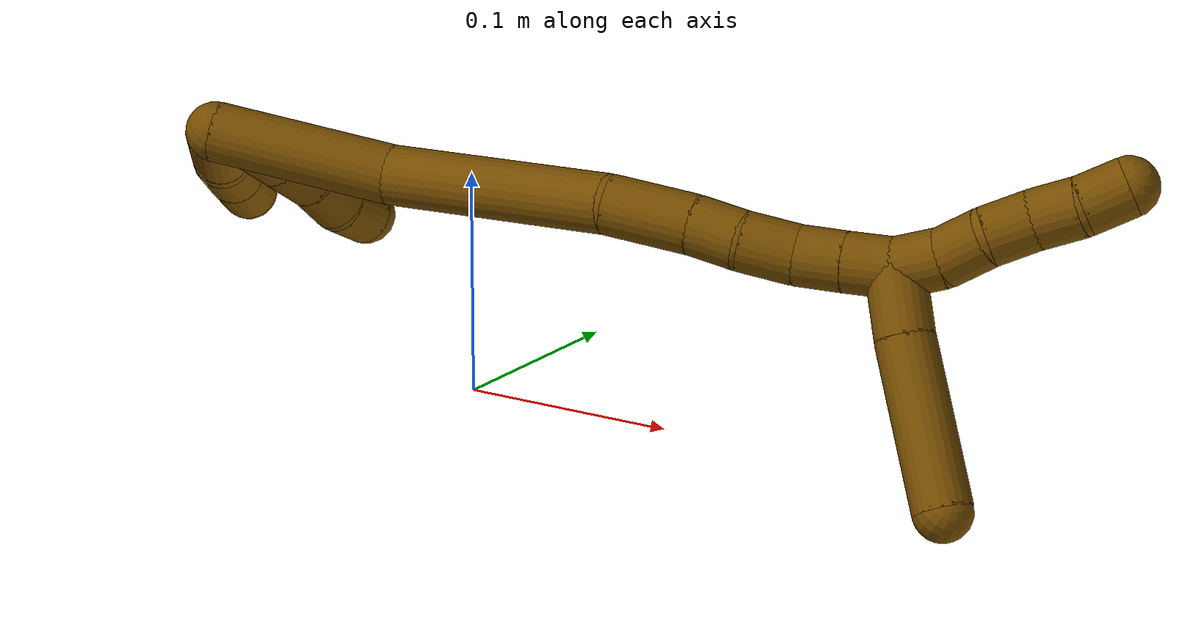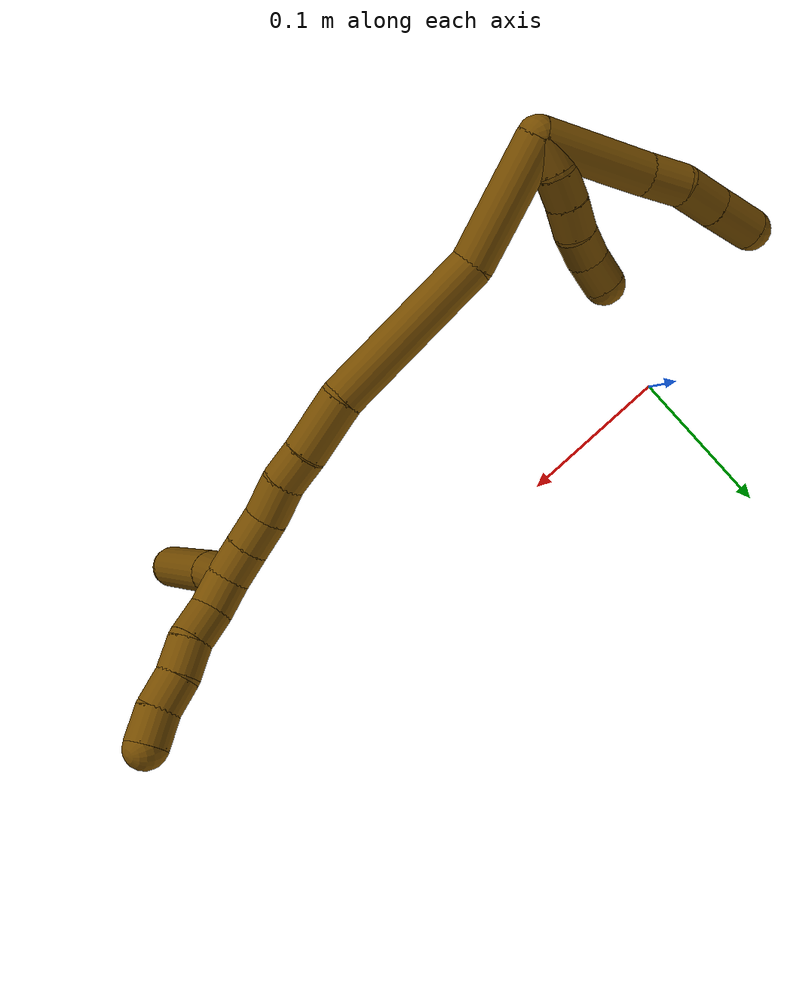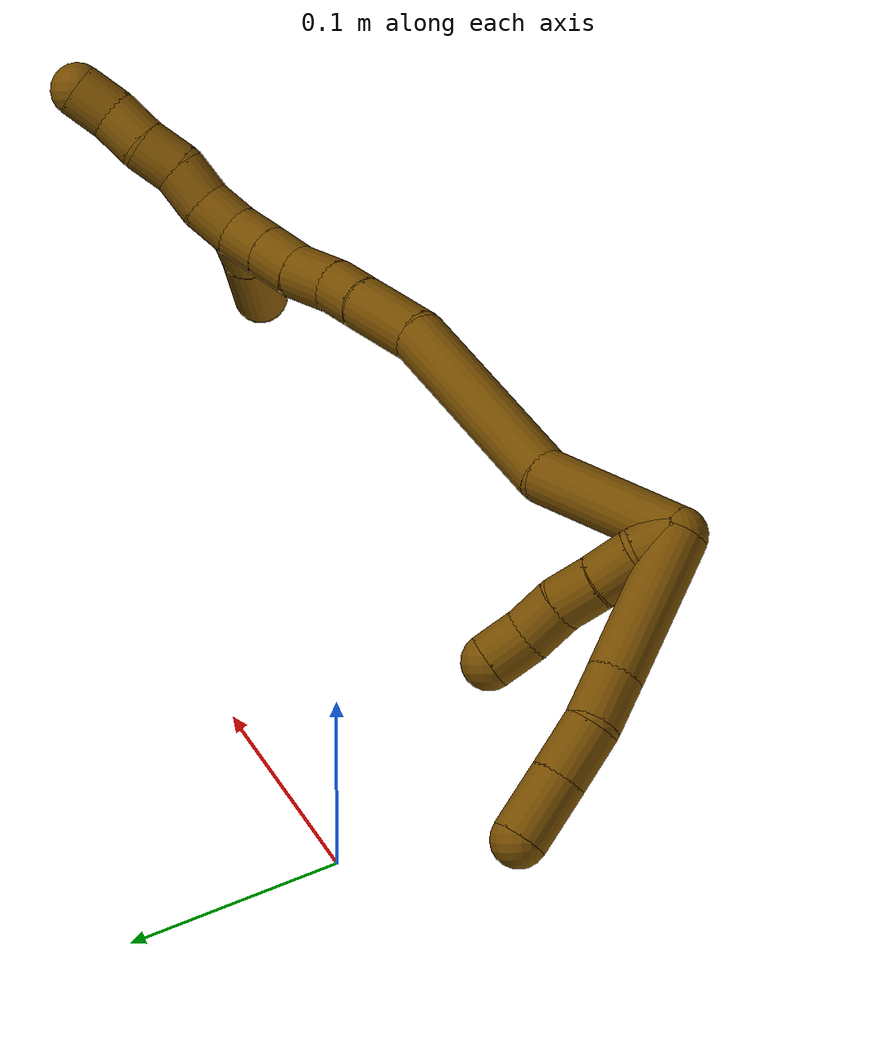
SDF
<sdf version="1.7">
 <world name="default">
  <model name="12">
   <static>0</static>
   <link name="12">
    <collision name="collision-cylinder-e_1_2_8">
     <pose>0.012303 0.016791 -0.027429 -2.59228 0.36538 -1.16069</pose>
     <geometry><cylinder><radius>0.0125</radius><length>0.068866</length></cylinder></geometry>
     <surface>
      <friction><ode><mu>1.16</mu><mu2>1.16</mu2><slip1>0</slip1><slip2>0</slip2></ode></friction>
      <contact><ode><kp>1e+06</kp><kd>1</kd><max_vel>0</max_vel><min_depth>0.001</min_depth></ode></contact>
     </surface>
    </collision>
    <visual name="visual-cylinder-e_1_2_8">
     <pose>0.012303 0.016791 -0.027429 -2.59228 0.36538 -1.16069</pose>
     <geometry><cylinder><radius>0.0125</radius><length>0.068866</length></cylinder></geometry>
     <material><ambient>0.466667 0.301961 0 1</ambient></material>
    </visual>
    <collision name="collision-cylinder-e_2_8_9">
     <pose>0.028726 0.040111 -0.064195 -2.53132 0.346963 -1.01544</pose>
     <geometry><cylinder><radius>0.0125</radius><length>0.024231</length></cylinder></geometry>
     <surface>
      <friction><ode><mu>1.16</mu><mu2>1.16</mu2><slip1>0</slip1><slip2>0</slip2></ode></friction>
      <contact><ode><kp>1e+06</kp><kd>1</kd><max_vel>0</max_vel><min_depth>0.001</min_depth></ode></contact>
     </surface>
    </collision>
    <visual name="visual-cylinder-e_2_8_9">
     <pose>0.028726 0.040111 -0.064195 -2.53132 0.346963 -1.01544</pose>
     <geometry><cylinder><radius>0.0125</radius><length>0.024231</length></cylinder></geometry>
     <material><ambient>0.466667 0.301961 0 1</ambient></material>
    </visual>
    <collision name="collision-cylinder-e_3_9_10">
     <pose>0.039642 0.051181 -0.083748 -2.72342 0.5462 -1.84497</pose>
     <geometry><cylinder><radius>0.0125</radius><length>0.026168</length></cylinder></geometry>
     <surface>
      <friction><ode><mu>1.16</mu><mu2>1.16</mu2><slip1>0</slip1><slip2>0</slip2></ode></friction>
      <contact><ode><kp>1e+06</kp><kd>1</kd><max_vel>0</max_vel><min_depth>0.001</min_depth></ode></contact>
     </surface>
    </collision>
    <visual name="visual-cylinder-e_3_9_10">
     <pose>0.039642 0.051181 -0.083748 -2.72342 0.5462 -1.84497</pose>
     <geometry><cylinder><radius>0.0125</radius><length>0.026168</length></cylinder></geometry>
     <material><ambient>0.466667 0.301961 0 1</ambient></material>
    </visual>
    <collision name="collision-cylinder-e_4_10_6">
     <pose>0.05439 0.0615 -0.105777 -2.68654 0.543875 -1.75565</pose>
     <geometry><cylinder><radius>0.0125</radius><length>0.030735</length></cylinder></geometry>
     <surface>
      <friction><ode><mu>1.16</mu><mu2>1.16</mu2><slip1>0</slip1><slip2>0</slip2></ode></friction>
      <contact><ode><kp>1e+06</kp><kd>1</kd><max_vel>0</max_vel><min_depth>0.001</min_depth></ode></contact>
     </surface>
    </collision>
    <visual name="visual-cylinder-e_4_10_6">
     <pose>0.05439 0.0615 -0.105777 -2.68654 0.543875 -1.75565</pose>
     <geometry><cylinder><radius>0.0125</radius><length>0.030735</length></cylinder></geometry>
     <material><ambient>0.466667 0.301961 0 1</ambient></material>
    </visual>
    <collision name="collision-cylinder-e_1_2_11">
     <pose>0.009036 0.001878 -0.003851 -2.68793 1.12803 -2.44186</pose>
     <geometry><cylinder><radius>0.0125</radius><length>0.02</length></cylinder></geometry>
     <surface>
      <friction><ode><mu>1.16</mu><mu2>1.16</mu2><slip1>0</slip1><slip2>0</slip2></ode></friction>
      <contact><ode><kp>1e+06</kp><kd>1</kd><max_vel>0</max_vel><min_depth>0.001</min_depth></ode></contact>
     </surface>
    </collision>
    <visual name="visual-cylinder-e_1_2_11">
     <pose>0.009036 0.001878 -0.003851 -2.68793 1.12803 -2.44186</pose>
     <geometry><cylinder><radius>0.0125</radius><length>0.02</length></cylinder></geometry>
     <material><ambient>0.466667 0.301961 0 1</ambient></material>
    </visual>
    <collision name="collision-cylinder-e_2_11_12">
     <pose>0.026662 0.003656 -0.012819 3.12212 1.03347 3.10732</pose>
     <geometry><cylinder><radius>0.0125</radius><length>0.02</length></cylinder></geometry>
     <surface>
      <friction><ode><mu>1.16</mu><mu2>1.16</mu2><slip1>0</slip1><slip2>0</slip2></ode></friction>
      <contact><ode><kp>1e+06</kp><kd>1</kd><max_vel>0</max_vel><min_depth>0.001</min_depth></ode></contact>
     </surface>
    </collision>
    <visual name="visual-cylinder-e_2_11_12">
     <pose>0.026662 0.003656 -0.012819 3.12212 1.03347 3.10732</pose>
     <geometry><cylinder><radius>0.0125</radius><length>0.02</length></cylinder></geometry>
     <material><ambient>0.466667 0.301961 0 1</ambient></material>
    </visual>
    <collision name="collision-cylinder-e_3_12_13">
     <pose>0.044054 0.002815 -0.022628 2.98486 1.07596 2.87989</pose>
     <geometry><cylinder><radius>0.0125</radius><length>0.02</length></cylinder></geometry>
     <surface>
      <friction><ode><mu>1.16</mu><mu2>1.16</mu2><slip1>0</slip1><slip2>0</slip2></ode></friction>
      <contact><ode><kp>1e+06</kp><kd>1</kd><max_vel>0</max_vel><min_depth>0.001</min_depth></ode></contact>
     </surface>
    </collision>
    <visual name="visual-cylinder-e_3_12_13">
     <pose>0.044054 0.002815 -0.022628 2.98486 1.07596 2.87989</pose>
     <geometry><cylinder><radius>0.0125</radius><length>0.02</length></cylinder></geometry>
     <material><ambient>0.466667 0.301961 0 1</ambient></material>
    </visual>
    <collision name="collision-cylinder-e_4_13_14">
     <pose>0.060599 0.001631 -0.033629 3.07156 0.885854 2.99416</pose>
     <geometry><cylinder><radius>0.0125</radius><length>0.02</length></cylinder></geometry>
     <surface>
      <friction><ode><mu>1.16</mu><mu2>1.16</mu2><slip1>0</slip1><slip2>0</slip2></ode></friction>
      <contact><ode><kp>1e+06</kp><kd>1</kd><max_vel>0</max_vel><min_depth>0.001</min_depth></ode></contact>
     </surface>
    </collision>
    <visual name="visual-cylinder-e_4_13_14">
     <pose>0.060599 0.001631 -0.033629 3.07156 0.885854 2.99416</pose>
     <geometry><cylinder><radius>0.0125</radius><length>0.02</length></cylinder></geometry>
     <material><ambient>0.466667 0.301961 0 1</ambient></material>
    </visual>
    <collision name="collision-cylinder-e_5_14_5">
     <pose>0.076611 0.003109 -0.045227 -2.79311 0.973326 -2.49925</pose>
     <geometry><cylinder><radius>0.0125</radius><length>0.02</length></cylinder></geometry>
     <surface>
      <friction><ode><mu>1.16</mu><mu2>1.16</mu2><slip1>0</slip1><slip2>0</slip2></ode></friction>
      <contact><ode><kp>1e+06</kp><kd>1</kd><max_vel>0</max_vel><min_depth>0.001</min_depth></ode></contact>
     </surface>
    </collision>
    <visual name="visual-cylinder-e_5_14_5">
     <pose>0.076611 0.003109 -0.045227 -2.79311 0.973326 -2.49925</pose>
     <geometry><cylinder><radius>0.0125</radius><length>0.02</length></cylinder></geometry>
     <material><ambient>0.466667 0.301961 0 1</ambient></material>
    </visual>
    <collision name="collision-cylinder-e_1_2_15">
     <pose>0.032253 -0.017041 0.012086 0.953906 0.996014 0.547803</pose>
     <geometry><cylinder><radius>0.0125</radius><length>0.076856</length></cylinder></geometry>
     <surface>
      <friction><ode><mu>1.16</mu><mu2>1.16</mu2><slip1>0</slip1><slip2>0</slip2></ode></friction>
      <contact><ode><kp>1e+06</kp><kd>1</kd><max_vel>0</max_vel><min_depth>0.001</min_depth></ode></contact>
     </surface>
    </collision>
    <visual name="visual-cylinder-e_1_2_15">
     <pose>0.032253 -0.017041 0.012086 0.953906 0.996014 0.547803</pose>
     <geometry><cylinder><radius>0.0125</radius><length>0.076856</length></cylinder></geometry>
     <material><ambient>0.466667 0.301961 0 1</ambient></material>
    </visual>
    <collision name="collision-cylinder-e_2_15_16">
     <pose>0.09673 -0.060583 0.053417 0.736202 0.684711 0.273193</pose>
     <geometry><cylinder><radius>0.0125</radius><length>0.101902</length></cylinder></geometry>
     <surface>
      <friction><ode><mu>1.16</mu><mu2>1.16</mu2><slip1>0</slip1><slip2>0</slip2></ode></friction>
      <contact><ode><kp>1e+06</kp><kd>1</kd><max_vel>0</max_vel><min_depth>0.001</min_depth></ode></contact>
     </surface>
    </collision>
    <visual name="visual-cylinder-e_2_15_16">
     <pose>0.09673 -0.060583 0.053417 0.736202 0.684711 0.273193</pose>
     <geometry><cylinder><radius>0.0125</radius><length>0.101902</length></cylinder></geometry>
     <material><ambient>0.466667 0.301961 0 1</ambient></material>
    </visual>
    <collision name="collision-cylinder-e_3_16_17">
     <pose>0.143273 -0.096298 0.08992 0.903707 0.884491 0.4518</pose>
     <geometry><cylinder><radius>0.0125</radius><length>0.037019</length></cylinder></geometry>
     <surface>
      <friction><ode><mu>1.16</mu><mu2>1.16</mu2><slip1>0</slip1><slip2>0</slip2></ode></friction>
      <contact><ode><kp>1e+06</kp><kd>1</kd><max_vel>0</max_vel><min_depth>0.001</min_depth></ode></contact>
     </surface>
    </collision>
    <visual name="visual-cylinder-e_3_16_17">
     <pose>0.143273 -0.096298 0.08992 0.903707 0.884491 0.4518</pose>
     <geometry><cylinder><radius>0.0125</radius><length>0.037019</length></cylinder></geometry>
     <material><ambient>0.466667 0.301961 0 1</ambient></material>
    </visual>
    <collision name="collision-cylinder-e_4_17_18">
     <pose>0.165215 -0.111467 0.100869 1.01569 0.827628 0.479429</pose>
     <geometry><cylinder><radius>0.0125</radius><length>0.020706</length></cylinder></geometry>
     <surface>
      <friction><ode><mu>1.16</mu><mu2>1.16</mu2><slip1>0</slip1><slip2>0</slip2></ode></friction>
      <contact><ode><kp>1e+06</kp><kd>1</kd><max_vel>0</max_vel><min_depth>0.001</min_depth></ode></contact>
     </surface>
    </collision>
    <visual name="visual-cylinder-e_4_17_18">
     <pose>0.165215 -0.111467 0.100869 1.01569 0.827628 0.479429</pose>
     <geometry><cylinder><radius>0.0125</radius><length>0.020706</length></cylinder></geometry>
     <material><ambient>0.466667 0.301961 0 1</ambient></material>
    </visual>
    <collision name="collision-cylinder-e_5_18_19">
     <pose>0.182737 -0.122558 0.10799 0.982297 1.0129 0.576838</pose>
     <geometry><cylinder><radius>0.0125</radius><length>0.023336</length></cylinder></geometry>
     <surface>
      <friction><ode><mu>1.16</mu><mu2>1.16</mu2><slip1>0</slip1><slip2>0</slip2></ode></friction>
      <contact><ode><kp>1e+06</kp><kd>1</kd><max_vel>0</max_vel><min_depth>0.001</min_depth></ode></contact>
     </surface>
    </collision>
    <visual name="visual-cylinder-e_5_18_19">
     <pose>0.182737 -0.122558 0.10799 0.982297 1.0129 0.576838</pose>
     <geometry><cylinder><radius>0.0125</radius><length>0.023336</length></cylinder></geometry>
     <material><ambient>0.466667 0.301961 0 1</ambient></material>
    </visual>
    <collision name="collision-cylinder-e_6_19_20">
     <pose>0.200451 -0.132015 0.115996 0.756412 0.892875 0.375893</pose>
     <geometry><cylinder><radius>0.0125</radius><length>0.020068</length></cylinder></geometry>
     <surface>
      <friction><ode><mu>1.16</mu><mu2>1.16</mu2><slip1>0</slip1><slip2>0</slip2></ode></friction>
      <contact><ode><kp>1e+06</kp><kd>1</kd><max_vel>0</max_vel><min_depth>0.001</min_depth></ode></contact>
     </surface>
    </collision>
    <visual name="visual-cylinder-e_6_19_20">
     <pose>0.200451 -0.132015 0.115996 0.756412 0.892875 0.375893</pose>
     <geometry><cylinder><radius>0.0125</radius><length>0.020068</length></cylinder></geometry>
     <material><ambient>0.466667 0.301961 0 1</ambient></material>
    </visual>
    <collision name="collision-cylinder-e_7_20_1">
     <pose>0.216157 -0.14049 0.12522 0.729687 0.902044 0.365827</pose>
     <geometry><cylinder><radius>0.0125</radius><length>0.020112</length></cylinder></geometry>
     <surface>
      <friction><ode><mu>1.16</mu><mu2>1.16</mu2><slip1>0</slip1><slip2>0</slip2></ode></friction>
      <contact><ode><kp>1e+06</kp><kd>1</kd><max_vel>0</max_vel><min_depth>0.001</min_depth></ode></contact>
     </surface>
    </collision>
    <visual name="visual-cylinder-e_7_20_1">
     <pose>0.216157 -0.14049 0.12522 0.729687 0.902044 0.365827</pose>
     <geometry><cylinder><radius>0.0125</radius><length>0.020112</length></cylinder></geometry>
     <material><ambient>0.466667 0.301961 0 1</ambient></material>
    </visual>
    <collision name="collision-cylinder-e_1_1_21">
     <pose>0.231568 -0.146149 0.136285 0.229947 0.851256 0.10461</pose>
     <geometry><cylinder><radius>0.0125</radius><length>0.02</length></cylinder></geometry>
     <surface>
      <friction><ode><mu>1.16</mu><mu2>1.16</mu2><slip1>0</slip1><slip2>0</slip2></ode></friction>
      <contact><ode><kp>1e+06</kp><kd>1</kd><max_vel>0</max_vel><min_depth>0.001</min_depth></ode></contact>
     </surface>
    </collision>
    <visual name="visual-cylinder-e_1_1_21">
     <pose>0.231568 -0.146149 0.136285 0.229947 0.851256 0.10461</pose>
     <geometry><cylinder><radius>0.0125</radius><length>0.02</length></cylinder></geometry>
     <material><ambient>0.466667 0.301961 0 1</ambient></material>
    </visual>
    <collision name="collision-cylinder-e_2_21_22">
     <pose>0.244864 -0.148021 0.150857 0.04538 0.615696 0.014431</pose>
     <geometry><cylinder><radius>0.0125</radius><length>0.02</length></cylinder></geometry>
     <surface>
      <friction><ode><mu>1.16</mu><mu2>1.16</mu2><slip1>0</slip1><slip2>0</slip2></ode></friction>
      <contact><ode><kp>1e+06</kp><kd>1</kd><max_vel>0</max_vel><min_depth>0.001</min_depth></ode></contact>
     </surface>
    </collision>
    <visual name="visual-cylinder-e_2_21_22">
     <pose>0.244864 -0.148021 0.150857 0.04538 0.615696 0.014431</pose>
     <geometry><cylinder><radius>0.0125</radius><length>0.02</length></cylinder></geometry>
     <material><ambient>0.466667 0.301961 0 1</ambient></material>
    </visual>
    <collision name="collision-cylinder-e_3_22_23">
     <pose>0.258494 -0.147922 0.165183 -0.07604 0.903524 -0.03691</pose>
     <geometry><cylinder><radius>0.0125</radius><length>0.02</length></cylinder></geometry>
     <surface>
      <friction><ode><mu>1.16</mu><mu2>1.16</mu2><slip1>0</slip1><slip2>0</slip2></ode></friction>
      <contact><ode><kp>1e+06</kp><kd>1</kd><max_vel>0</max_vel><min_depth>0.001</min_depth></ode></contact>
     </surface>
    </collision>
    <visual name="visual-cylinder-e_3_22_23">
     <pose>0.258494 -0.147922 0.165183 -0.07604 0.903524 -0.03691</pose>
     <geometry><cylinder><radius>0.0125</radius><length>0.02</length></cylinder></geometry>
     <material><ambient>0.466667 0.301961 0 1</ambient></material>
    </visual>
    <collision name="collision-cylinder-e_4_23_24">
     <pose>0.273388 -0.14871 0.178344 0.178072 0.780808 0.073443</pose>
     <geometry><cylinder><radius>0.0125</radius><length>0.02</length></cylinder></geometry>
     <surface>
      <friction><ode><mu>1.16</mu><mu2>1.16</mu2><slip1>0</slip1><slip2>0</slip2></ode></friction>
      <contact><ode><kp>1e+06</kp><kd>1</kd><max_vel>0</max_vel><min_depth>0.001</min_depth></ode></contact>
     </surface>
    </collision>
    <visual name="visual-cylinder-e_4_23_24">
     <pose>0.273388 -0.14871 0.178344 0.178072 0.780808 0.073443</pose>
     <geometry><cylinder><radius>0.0125</radius><length>0.02</length></cylinder></geometry>
     <material><ambient>0.466667 0.301961 0 1</ambient></material>
    </visual>
    <collision name="collision-cylinder-e_5_24_4">
     <pose>0.288127 -0.149016 0.191644 -0.149825 0.878916 -0.070538</pose>
     <geometry><cylinder><radius>0.0125</radius><length>0.02</length></cylinder></geometry>
     <surface>
      <friction><ode><mu>1.16</mu><mu2>1.16</mu2><slip1>0</slip1><slip2>0</slip2></ode></friction>
      <contact><ode><kp>1e+06</kp><kd>1</kd><max_vel>0</max_vel><min_depth>0.001</min_depth></ode></contact>
     </surface>
    </collision>
    <visual name="visual-cylinder-e_5_24_4">
     <pose>0.288127 -0.149016 0.191644 -0.149825 0.878916 -0.070538</pose>
     <geometry><cylinder><radius>0.0125</radius><length>0.02</length></cylinder></geometry>
     <material><ambient>0.466667 0.301961 0 1</ambient></material>
    </visual>
    <collision name="collision-cylinder-e_1_1_25">
     <pose>0.225791 -0.157766 0.124229 1.97676 0.121544 0.184245</pose>
     <geometry><cylinder><radius>0.0125</radius><length>0.028772</length></cylinder></geometry>
     <surface>
      <friction><ode><mu>1.16</mu><mu2>1.16</mu2><slip1>0</slip1><slip2>0</slip2></ode></friction>
      <contact><ode><kp>1e+06</kp><kd>1</kd><max_vel>0</max_vel><min_depth>0.001</min_depth></ode></contact>
     </surface>
    </collision>
    <visual name="visual-cylinder-e_1_1_25">
     <pose>0.225791 -0.157766 0.124229 1.97676 0.121544 0.184245</pose>
     <geometry><cylinder><radius>0.0125</radius><length>0.028772</length></cylinder></geometry>
     <material><ambient>0.466667 0.301961 0 1</ambient></material>
    </visual>
    <collision name="collision-cylinder-e_2_25_3">
     <pose>0.233859 -0.203736 0.106375 1.92678 0.178513 0.256105</pose>
     <geometry><cylinder><radius>0.0125</radius><length>0.071228</length></cylinder></geometry>
     <surface>
      <friction><ode><mu>1.16</mu><mu2>1.16</mu2><slip1>0</slip1><slip2>0</slip2></ode></friction>
      <contact><ode><kp>1e+06</kp><kd>1</kd><max_vel>0</max_vel><min_depth>0.001</min_depth></ode></contact>
     </surface>
    </collision>
    <visual name="visual-cylinder-e_2_25_3">
     <pose>0.233859 -0.203736 0.106375 1.92678 0.178513 0.256105</pose>
     <geometry><cylinder><radius>0.0125</radius><length>0.071228</length></cylinder></geometry>
     <material><ambient>0.466667 0.301961 0 1</ambient></material>
    </visual>
    <collision name="collision-sphere-3">
     <pose>0.240183 -0.236587 0.09416 0 -0 0</pose>
     <geometry><sphere><radius>0.0125</radius></sphere></geometry>
     <surface>
      <friction><ode><mu>1.16</mu><mu2>1.16</mu2><slip1>0</slip1><slip2>0</slip2></ode></friction>
      <contact><ode><kp>1e+06</kp><kd>1</kd><max_vel>0</max_vel><min_depth>0.001</min_depth></ode></contact>
     </surface>
    </collision>
    <visual name="visual-sphere-3">
     <pose>0.240183 -0.236587 0.09416 0 -0 0</pose>
     <geometry><sphere><radius>0.0125</radius></sphere></geometry>
     <material><ambient>0.466667 0.301961 0 1</ambient></material>
    </visual>
    <collision name="collision-sphere-25">
     <pose>0.227535 -0.170885 0.11859 0 -0 0</pose>
     <geometry><sphere><radius>0.0125</radius></sphere></geometry>
     <surface>
      <friction><ode><mu>1.16</mu><mu2>1.16</mu2><slip1>0</slip1><slip2>0</slip2></ode></friction>
      <contact><ode><kp>1e+06</kp><kd>1</kd><max_vel>0</max_vel><min_depth>0.001</min_depth></ode></contact>
     </surface>
    </collision>
    <visual name="visual-sphere-25">
     <pose>0.227535 -0.170885 0.11859 0 -0 0</pose>
     <geometry><sphere><radius>0.0125</radius></sphere></geometry>
     <material><ambient>0.466667 0.301961 0 1</ambient></material>
    </visual>
    <collision name="collision-sphere-4">
     <pose>0.295828 -0.148063 0.197952 0 -0 0</pose>
     <geometry><sphere><radius>0.0125</radius></sphere></geometry>
     <surface>
      <friction><ode><mu>1.16</mu><mu2>1.16</mu2><slip1>0</slip1><slip2>0</slip2></ode></friction>
      <contact><ode><kp>1e+06</kp><kd>1</kd><max_vel>0</max_vel><min_depth>0.001</min_depth></ode></contact>
     </surface>
    </collision>
    <visual name="visual-sphere-4">
     <pose>0.295828 -0.148063 0.197952 0 -0 0</pose>
     <geometry><sphere><radius>0.0125</radius></sphere></geometry>
     <material><ambient>0.466667 0.301961 0 1</ambient></material>
    </visual>
    <collision name="collision-sphere-24">
     <pose>0.280427 -0.149968 0.185336 0 -0 0</pose>
     <geometry><sphere><radius>0.0125</radius></sphere></geometry>
     <surface>
      <friction><ode><mu>1.16</mu><mu2>1.16</mu2><slip1>0</slip1><slip2>0</slip2></ode></friction>
      <contact><ode><kp>1e+06</kp><kd>1</kd><max_vel>0</max_vel><min_depth>0.001</min_depth></ode></contact>
     </surface>
    </collision>
    <visual name="visual-sphere-24">
     <pose>0.280427 -0.149968 0.185336 0 -0 0</pose>
     <geometry><sphere><radius>0.0125</radius></sphere></geometry>
     <material><ambient>0.466667 0.301961 0 1</ambient></material>
    </visual>
    <collision name="collision-sphere-23">
     <pose>0.266349 -0.147452 0.171353 0 -0 0</pose>
     <geometry><sphere><radius>0.0125</radius></sphere></geometry>
     <surface>
      <friction><ode><mu>1.16</mu><mu2>1.16</mu2><slip1>0</slip1><slip2>0</slip2></ode></friction>
      <contact><ode><kp>1e+06</kp><kd>1</kd><max_vel>0</max_vel><min_depth>0.001</min_depth></ode></contact>
     </surface>
    </collision>
    <visual name="visual-sphere-23">
     <pose>0.266349 -0.147452 0.171353 0 -0 0</pose>
     <geometry><sphere><radius>0.0125</radius></sphere></geometry>
     <material><ambient>0.466667 0.301961 0 1</ambient></material>
    </visual>
    <collision name="collision-sphere-22">
     <pose>0.250639 -0.148392 0.159012 0 -0 0</pose>
     <geometry><sphere><radius>0.0125</radius></sphere></geometry>
     <surface>
      <friction><ode><mu>1.16</mu><mu2>1.16</mu2><slip1>0</slip1><slip2>0</slip2></ode></friction>
      <contact><ode><kp>1e+06</kp><kd>1</kd><max_vel>0</max_vel><min_depth>0.001</min_depth></ode></contact>
     </surface>
    </collision>
    <visual name="visual-sphere-22">
     <pose>0.250639 -0.148392 0.159012 0 -0 0</pose>
     <geometry><sphere><radius>0.0125</radius></sphere></geometry>
     <material><ambient>0.466667 0.301961 0 1</ambient></material>
    </visual>
    <collision name="collision-sphere-21">
     <pose>0.239089 -0.147651 0.142702 0 -0 0</pose>
     <geometry><sphere><radius>0.0125</radius></sphere></geometry>
     <surface>
      <friction><ode><mu>1.16</mu><mu2>1.16</mu2><slip1>0</slip1><slip2>0</slip2></ode></friction>
      <contact><ode><kp>1e+06</kp><kd>1</kd><max_vel>0</max_vel><min_depth>0.001</min_depth></ode></contact>
     </surface>
    </collision>
    <visual name="visual-sphere-21">
     <pose>0.239089 -0.147651 0.142702 0 -0 0</pose>
     <geometry><sphere><radius>0.0125</radius></sphere></geometry>
     <material><ambient>0.466667 0.301961 0 1</ambient></material>
    </visual>
    <collision name="collision-sphere-1">
     <pose>0.224046 -0.144647 0.129868 0 -0 0</pose>
     <geometry><sphere><radius>0.0125</radius></sphere></geometry>
     <surface>
      <friction><ode><mu>1.16</mu><mu2>1.16</mu2><slip1>0</slip1><slip2>0</slip2></ode></friction>
      <contact><ode><kp>1e+06</kp><kd>1</kd><max_vel>0</max_vel><min_depth>0.001</min_depth></ode></contact>
     </surface>
    </collision>
    <visual name="visual-sphere-1">
     <pose>0.224046 -0.144647 0.129868 0 -0 0</pose>
     <geometry><sphere><radius>0.0125</radius></sphere></geometry>
     <material><ambient>0.466667 0.301961 0 1</ambient></material>
    </visual>
    <collision name="collision-sphere-11">
     <pose>0.018071 0.003755 -0.007702 0 -0 0</pose>
     <geometry><sphere><radius>0.0125</radius></sphere></geometry>
     <surface>
      <friction><ode><mu>1.16</mu><mu2>1.16</mu2><slip1>0</slip1><slip2>0</slip2></ode></friction>
      <contact><ode><kp>1e+06</kp><kd>1</kd><max_vel>0</max_vel><min_depth>0.001</min_depth></ode></contact>
     </surface>
    </collision>
    <visual name="visual-sphere-11">
     <pose>0.018071 0.003755 -0.007702 0 -0 0</pose>
     <geometry><sphere><radius>0.0125</radius></sphere></geometry>
     <material><ambient>0.466667 0.301961 0 1</ambient></material>
    </visual>
    <collision name="collision-sphere-6">
     <pose>0.062343 0.06728 -0.117589 0 -0 0</pose>
     <geometry><sphere><radius>0.0125</radius></sphere></geometry>
     <surface>
      <friction><ode><mu>1.16</mu><mu2>1.16</mu2><slip1>0</slip1><slip2>0</slip2></ode></friction>
      <contact><ode><kp>1e+06</kp><kd>1</kd><max_vel>0</max_vel><min_depth>0.001</min_depth></ode></contact>
     </surface>
    </collision>
    <visual name="visual-sphere-6">
     <pose>0.062343 0.06728 -0.117589 0 -0 0</pose>
     <geometry><sphere><radius>0.0125</radius></sphere></geometry>
     <material><ambient>0.466667 0.301961 0 1</ambient></material>
    </visual>
    <collision name="collision-sphere-10">
     <pose>0.046438 0.055721 -0.093965 0 -0 0</pose>
     <geometry><sphere><radius>0.0125</radius></sphere></geometry>
     <surface>
      <friction><ode><mu>1.16</mu><mu2>1.16</mu2><slip1>0</slip1><slip2>0</slip2></ode></friction>
      <contact><ode><kp>1e+06</kp><kd>1</kd><max_vel>0</max_vel><min_depth>0.001</min_depth></ode></contact>
     </surface>
    </collision>
    <visual name="visual-sphere-10">
     <pose>0.046438 0.055721 -0.093965 0 -0 0</pose>
     <geometry><sphere><radius>0.0125</radius></sphere></geometry>
     <material><ambient>0.466667 0.301961 0 1</ambient></material>
    </visual>
    <collision name="collision-sphere-9">
     <pose>0.032846 0.04664 -0.073531 0 -0 0</pose>
     <geometry><sphere><radius>0.0125</radius></sphere></geometry>
     <surface>
      <friction><ode><mu>1.16</mu><mu2>1.16</mu2><slip1>0</slip1><slip2>0</slip2></ode></friction>
      <contact><ode><kp>1e+06</kp><kd>1</kd><max_vel>0</max_vel><min_depth>0.001</min_depth></ode></contact>
     </surface>
    </collision>
    <visual name="visual-sphere-9">
     <pose>0.032846 0.04664 -0.073531 0 -0 0</pose>
     <geometry><sphere><radius>0.0125</radius></sphere></geometry>
     <material><ambient>0.466667 0.301961 0 1</ambient></material>
    </visual>
    <collision name="collision-sphere-2">
     <geometry><sphere><radius>0.0125</radius></sphere></geometry>
     <surface>
      <friction><ode><mu>1.16</mu><mu2>1.16</mu2><slip1>0</slip1><slip2>0</slip2></ode></friction>
      <contact><ode><kp>1e+06</kp><kd>1</kd><max_vel>0</max_vel><min_depth>0.001</min_depth></ode></contact>
     </surface>
    </collision>
    <visual name="visual-sphere-2">
     <geometry><sphere><radius>0.0125</radius></sphere></geometry>
     <material><ambient>0.466667 0.301961 0 1</ambient></material>
    </visual>
    <collision name="collision-sphere-19">
     <pose>0.192636 -0.127696 0.111419 0 -0 0</pose>
     <geometry><sphere><radius>0.0125</radius></sphere></geometry>
     <surface>
      <friction><ode><mu>1.16</mu><mu2>1.16</mu2><slip1>0</slip1><slip2>0</slip2></ode></friction>
      <contact><ode><kp>1e+06</kp><kd>1</kd><max_vel>0</max_vel><min_depth>0.001</min_depth></ode></contact>
     </surface>
    </collision>
    <visual name="visual-sphere-19">
     <pose>0.192636 -0.127696 0.111419 0 -0 0</pose>
     <geometry><sphere><radius>0.0125</radius></sphere></geometry>
     <material><ambient>0.466667 0.301961 0 1</ambient></material>
    </visual>
    <collision name="collision-sphere-8">
     <pose>0.024606 0.033582 -0.054858 0 -0 0</pose>
     <geometry><sphere><radius>0.0125</radius></sphere></geometry>
     <surface>
      <friction><ode><mu>1.16</mu><mu2>1.16</mu2><slip1>0</slip1><slip2>0</slip2></ode></friction>
      <contact><ode><kp>1e+06</kp><kd>1</kd><max_vel>0</max_vel><min_depth>0.001</min_depth></ode></contact>
     </surface>
    </collision>
    <visual name="visual-sphere-8">
     <pose>0.024606 0.033582 -0.054858 0 -0 0</pose>
     <geometry><sphere><radius>0.0125</radius></sphere></geometry>
     <material><ambient>0.466667 0.301961 0 1</ambient></material>
    </visual>
    <collision name="collision-sphere-12">
     <pose>0.035253 0.003556 -0.017937 0 -0 0</pose>
     <geometry><sphere><radius>0.0125</radius></sphere></geometry>
     <surface>
      <friction><ode><mu>1.16</mu><mu2>1.16</mu2><slip1>0</slip1><slip2>0</slip2></ode></friction>
      <contact><ode><kp>1e+06</kp><kd>1</kd><max_vel>0</max_vel><min_depth>0.001</min_depth></ode></contact>
     </surface>
    </collision>
    <visual name="visual-sphere-12">
     <pose>0.035253 0.003556 -0.017937 0 -0 0</pose>
     <geometry><sphere><radius>0.0125</radius></sphere></geometry>
     <material><ambient>0.466667 0.301961 0 1</ambient></material>
    </visual>
    <collision name="collision-sphere-13">
     <pose>0.052854 0.002074 -0.027318 0 -0 0</pose>
     <geometry><sphere><radius>0.0125</radius></sphere></geometry>
     <surface>
      <friction><ode><mu>1.16</mu><mu2>1.16</mu2><slip1>0</slip1><slip2>0</slip2></ode></friction>
      <contact><ode><kp>1e+06</kp><kd>1</kd><max_vel>0</max_vel><min_depth>0.001</min_depth></ode></contact>
     </surface>
    </collision>
    <visual name="visual-sphere-13">
     <pose>0.052854 0.002074 -0.027318 0 -0 0</pose>
     <geometry><sphere><radius>0.0125</radius></sphere></geometry>
     <material><ambient>0.466667 0.301961 0 1</ambient></material>
    </visual>
    <collision name="collision-sphere-14">
     <pose>0.068343 0.001188 -0.03994 0 -0 0</pose>
     <geometry><sphere><radius>0.0125</radius></sphere></geometry>
     <surface>
      <friction><ode><mu>1.16</mu><mu2>1.16</mu2><slip1>0</slip1><slip2>0</slip2></ode></friction>
      <contact><ode><kp>1e+06</kp><kd>1</kd><max_vel>0</max_vel><min_depth>0.001</min_depth></ode></contact>
     </surface>
    </collision>
    <visual name="visual-sphere-14">
     <pose>0.068343 0.001188 -0.03994 0 -0 0</pose>
     <geometry><sphere><radius>0.0125</radius></sphere></geometry>
     <material><ambient>0.466667 0.301961 0 1</ambient></material>
    </visual>
    <collision name="collision-sphere-5">
     <pose>0.084878 0.00503 -0.050514 0 -0 0</pose>
     <geometry><sphere><radius>0.0125</radius></sphere></geometry>
     <surface>
      <friction><ode><mu>1.16</mu><mu2>1.16</mu2><slip1>0</slip1><slip2>0</slip2></ode></friction>
      <contact><ode><kp>1e+06</kp><kd>1</kd><max_vel>0</max_vel><min_depth>0.001</min_depth></ode></contact>
     </surface>
    </collision>
    <visual name="visual-sphere-5">
     <pose>0.084878 0.00503 -0.050514 0 -0 0</pose>
     <geometry><sphere><radius>0.0125</radius></sphere></geometry>
     <material><ambient>0.466667 0.301961 0 1</ambient></material>
    </visual>
    <collision name="collision-sphere-15">
     <pose>0.064506 -0.034081 0.024171 0 -0 0</pose>
     <geometry><sphere><radius>0.0125</radius></sphere></geometry>
     <surface>
      <friction><ode><mu>1.16</mu><mu2>1.16</mu2><slip1>0</slip1><slip2>0</slip2></ode></friction>
      <contact><ode><kp>1e+06</kp><kd>1</kd><max_vel>0</max_vel><min_depth>0.001</min_depth></ode></contact>
     </surface>
    </collision>
    <visual name="visual-sphere-15">
     <pose>0.064506 -0.034081 0.024171 0 -0 0</pose>
     <geometry><sphere><radius>0.0125</radius></sphere></geometry>
     <material><ambient>0.466667 0.301961 0 1</ambient></material>
    </visual>
    <collision name="collision-sphere-16">
     <pose>0.128954 -0.087084 0.082663 0 -0 0</pose>
     <geometry><sphere><radius>0.0125</radius></sphere></geometry>
     <surface>
      <friction><ode><mu>1.16</mu><mu2>1.16</mu2><slip1>0</slip1><slip2>0</slip2></ode></friction>
      <contact><ode><kp>1e+06</kp><kd>1</kd><max_vel>0</max_vel><min_depth>0.001</min_depth></ode></contact>
     </surface>
    </collision>
    <visual name="visual-sphere-16">
     <pose>0.128954 -0.087084 0.082663 0 -0 0</pose>
     <geometry><sphere><radius>0.0125</radius></sphere></geometry>
     <material><ambient>0.466667 0.301961 0 1</ambient></material>
    </visual>
    <collision name="collision-sphere-17">
     <pose>0.157591 -0.105513 0.097177 0 -0 0</pose>
     <geometry><sphere><radius>0.0125</radius></sphere></geometry>
     <surface>
      <friction><ode><mu>1.16</mu><mu2>1.16</mu2><slip1>0</slip1><slip2>0</slip2></ode></friction>
      <contact><ode><kp>1e+06</kp><kd>1</kd><max_vel>0</max_vel><min_depth>0.001</min_depth></ode></contact>
     </surface>
    </collision>
    <visual name="visual-sphere-17">
     <pose>0.157591 -0.105513 0.097177 0 -0 0</pose>
     <geometry><sphere><radius>0.0125</radius></sphere></geometry>
     <material><ambient>0.466667 0.301961 0 1</ambient></material>
    </visual>
    <collision name="collision-sphere-18">
     <pose>0.172838 -0.11742 0.104561 0 -0 0</pose>
     <geometry><sphere><radius>0.0125</radius></sphere></geometry>
     <surface>
      <friction><ode><mu>1.16</mu><mu2>1.16</mu2><slip1>0</slip1><slip2>0</slip2></ode></friction>
      <contact><ode><kp>1e+06</kp><kd>1</kd><max_vel>0</max_vel><min_depth>0.001</min_depth></ode></contact>
     </surface>
    </collision>
    <visual name="visual-sphere-18">
     <pose>0.172838 -0.11742 0.104561 0 -0 0</pose>
     <geometry><sphere><radius>0.0125</radius></sphere></geometry>
     <material><ambient>0.466667 0.301961 0 1</ambient></material>
    </visual>
    <collision name="collision-sphere-20">
     <pose>0.208267 -0.136334 0.120573 0 -0 0</pose>
     <geometry><sphere><radius>0.0125</radius></sphere></geometry>
     <surface>
      <friction><ode><mu>1.16</mu><mu2>1.16</mu2><slip1>0</slip1><slip2>0</slip2></ode></friction>
      <contact><ode><kp>1e+06</kp><kd>1</kd><max_vel>0</max_vel><min_depth>0.001</min_depth></ode></contact>
     </surface>
    </collision>
    <visual name="visual-sphere-20">
     <pose>0.208267 -0.136334 0.120573 0 -0 0</pose>
     <geometry><sphere><radius>0.0125</radius></sphere></geometry>
     <material><ambient>0.466667 0.301961 0 1</ambient></material>
    </visual>
    <inertial>
     <pose>0.121826 -0.066558 0.047338 0 -0 0</pose>
     <mass>0.75</mass>
     <inertia>
      <ixx>0.000187</ixx>
      <ixy>0</ixy>
      <ixz>0</ixz>
      <iyy>0.000118</iyy>
      <iyz>0</iyz>
      <izz>-4.8e-05</izz>
     </inertia>
    </inertial>
   </link>
   <pose>-0.024822 -0.151265 0.150943 0.644818 0.19874 0.931027</pose>
  </model>
 </world>
</sdf>
